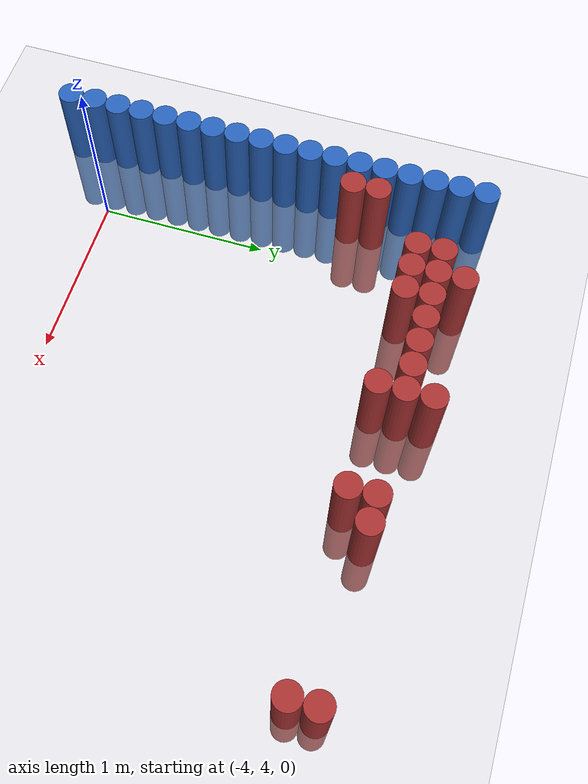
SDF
<sdf version="1.6">
 <world name="default">
  <model name="ground_plane">
   <static>1</static>
   <link name="link">
    <collision name="collision">
     <geometry><plane><normal>0 0 1</normal><size>100 100</size></plane></geometry>
     <surface><friction><ode><mu>100</mu><mu2>50</mu2></ode></friction></surface>
    </collision>
    <visual name="visual">
     <cast_shadows>0</cast_shadows>
     <geometry><plane><normal>0 0 1</normal><size>100 100</size></plane></geometry>
     <material>
      <script><uri>file://media/materials/scripts/gazebo.material</uri><name>Gazebo/Grey</name></script>
     </material>
    </visual>
   </link>
  </model>
  <model name="unit_cylinder_77">
   <static>1</static>
   <pose>-4.425000 3.675000 0.000000 0.000000 0.000000 0.000000</pose>
   <link name="link">
    <inertial>
     <mass>1</mass>
     <inertia><ixx>0.145833</ixx><ixy>0</ixy><ixz>0</ixz><iyy>0.145833</iyy><iyz>0</iyz><izz>0.125</izz></inertia>
    </inertial>
    <collision name="collision">
     <geometry><cylinder><radius>0.075000</radius><length>1</length></cylinder></geometry>
    </collision>
    <visual name="visual">
     <geometry><cylinder><radius>0.075000</radius><length>1</length></cylinder></geometry>
     <material>
      <ambient>0.152000 0.379000 0.720000 1</ambient>
      <diffuse>0.152000 0.379000 0.720000 1</diffuse>
     </material>
     <material>
      <script><name>Gazebo/Grey</name><uri>file://media/materials/scripts/gazebo.material</uri></script>
     </material>
    </visual>
    <sensor name="sensor_contact" type="contact"><contact><collision>collision</collision></contact></sensor>
   </link>
   <plugin filename="gz-sim-touchplugin-system" name="gz::sim::systems::TouchPlugin">
    <target>robot</target>
    <namespace>robot</namespace>
    <time>0.001</time>
    <enabled>true</enabled>
   </plugin>
  </model>
  <model name="unit_cylinder_79">
   <static>1</static>
   <pose>-4.425000 3.825000 0.000000 0.000000 0.000000 0.000000</pose>
   <link name="link">
    <inertial>
     <mass>1</mass>
     <inertia><ixx>0.145833</ixx><ixy>0</ixy><ixz>0</ixz><iyy>0.145833</iyy><iyz>0</iyz><izz>0.125</izz></inertia>
    </inertial>
    <collision name="collision">
     <geometry><cylinder><radius>0.075000</radius><length>1</length></cylinder></geometry>
    </collision>
    <visual name="visual">
     <geometry><cylinder><radius>0.075000</radius><length>1</length></cylinder></geometry>
     <material>
      <ambient>0.152000 0.379000 0.720000 1</ambient>
      <diffuse>0.152000 0.379000 0.720000 1</diffuse>
     </material>
     <material>
      <script><name>Gazebo/Grey</name><uri>file://media/materials/scripts/gazebo.material</uri></script>
     </material>
    </visual>
    <sensor name="sensor_contact" type="contact"><contact><collision>collision</collision></contact></sensor>
   </link>
   <plugin filename="gz-sim-touchplugin-system" name="gz::sim::systems::TouchPlugin">
    <target>robot</target>
    <namespace>robot</namespace>
    <time>0.001</time>
    <enabled>true</enabled>
   </plugin>
  </model>
  <model name="unit_cylinder_81">
   <static>1</static>
   <pose>-4.425000 3.975000 0.000000 0.000000 0.000000 0.000000</pose>
   <link name="link">
    <inertial>
     <mass>1</mass>
     <inertia><ixx>0.145833</ixx><ixy>0</ixy><ixz>0</ixz><iyy>0.145833</iyy><iyz>0</iyz><izz>0.125</izz></inertia>
    </inertial>
    <collision name="collision">
     <geometry><cylinder><radius>0.075000</radius><length>1</length></cylinder></geometry>
    </collision>
    <visual name="visual">
     <geometry><cylinder><radius>0.075000</radius><length>1</length></cylinder></geometry>
     <material>
      <ambient>0.152000 0.379000 0.720000 1</ambient>
      <diffuse>0.152000 0.379000 0.720000 1</diffuse>
     </material>
     <material>
      <script><name>Gazebo/Grey</name><uri>file://media/materials/scripts/gazebo.material</uri></script>
     </material>
    </visual>
    <sensor name="sensor_contact" type="contact"><contact><collision>collision</collision></contact></sensor>
   </link>
   <plugin filename="gz-sim-touchplugin-system" name="gz::sim::systems::TouchPlugin">
    <target>robot</target>
    <namespace>robot</namespace>
    <time>0.001</time>
    <enabled>true</enabled>
   </plugin>
  </model>
  <model name="unit_cylinder_83">
   <static>1</static>
   <pose>-4.425000 4.125000 0.000000 0.000000 0.000000 0.000000</pose>
   <link name="link">
    <inertial>
     <mass>1</mass>
     <inertia><ixx>0.145833</ixx><ixy>0</ixy><ixz>0</ixz><iyy>0.145833</iyy><iyz>0</iyz><izz>0.125</izz></inertia>
    </inertial>
    <collision name="collision">
     <geometry><cylinder><radius>0.075000</radius><length>1</length></cylinder></geometry>
    </collision>
    <visual name="visual">
     <geometry><cylinder><radius>0.075000</radius><length>1</length></cylinder></geometry>
     <material>
      <ambient>0.152000 0.379000 0.720000 1</ambient>
      <diffuse>0.152000 0.379000 0.720000 1</diffuse>
     </material>
     <material>
      <script><name>Gazebo/Grey</name><uri>file://media/materials/scripts/gazebo.material</uri></script>
     </material>
    </visual>
    <sensor name="sensor_contact" type="contact"><contact><collision>collision</collision></contact></sensor>
   </link>
   <plugin filename="gz-sim-touchplugin-system" name="gz::sim::systems::TouchPlugin">
    <target>robot</target>
    <namespace>robot</namespace>
    <time>0.001</time>
    <enabled>true</enabled>
   </plugin>
  </model>
  <model name="unit_cylinder_85">
   <static>1</static>
   <pose>-4.425000 4.275000 0.000000 0.000000 0.000000 0.000000</pose>
   <link name="link">
    <inertial>
     <mass>1</mass>
     <inertia><ixx>0.145833</ixx><ixy>0</ixy><ixz>0</ixz><iyy>0.145833</iyy><iyz>0</iyz><izz>0.125</izz></inertia>
    </inertial>
    <collision name="collision">
     <geometry><cylinder><radius>0.075000</radius><length>1</length></cylinder></geometry>
    </collision>
    <visual name="visual">
     <geometry><cylinder><radius>0.075000</radius><length>1</length></cylinder></geometry>
     <material>
      <ambient>0.152000 0.379000 0.720000 1</ambient>
      <diffuse>0.152000 0.379000 0.720000 1</diffuse>
     </material>
     <material>
      <script><name>Gazebo/Grey</name><uri>file://media/materials/scripts/gazebo.material</uri></script>
     </material>
    </visual>
    <sensor name="sensor_contact" type="contact"><contact><collision>collision</collision></contact></sensor>
   </link>
   <plugin filename="gz-sim-touchplugin-system" name="gz::sim::systems::TouchPlugin">
    <target>robot</target>
    <namespace>robot</namespace>
    <time>0.001</time>
    <enabled>true</enabled>
   </plugin>
  </model>
  <model name="unit_cylinder_87">
   <static>1</static>
   <pose>-4.425000 4.425000 0.000000 0.000000 0.000000 0.000000</pose>
   <link name="link">
    <inertial>
     <mass>1</mass>
     <inertia><ixx>0.145833</ixx><ixy>0</ixy><ixz>0</ixz><iyy>0.145833</iyy><iyz>0</iyz><izz>0.125</izz></inertia>
    </inertial>
    <collision name="collision">
     <geometry><cylinder><radius>0.075000</radius><length>1</length></cylinder></geometry>
    </collision>
    <visual name="visual">
     <geometry><cylinder><radius>0.075000</radius><length>1</length></cylinder></geometry>
     <material>
      <ambient>0.152000 0.379000 0.720000 1</ambient>
      <diffuse>0.152000 0.379000 0.720000 1</diffuse>
     </material>
     <material>
      <script><name>Gazebo/Grey</name><uri>file://media/materials/scripts/gazebo.material</uri></script>
     </material>
    </visual>
    <sensor name="sensor_contact" type="contact"><contact><collision>collision</collision></contact></sensor>
   </link>
   <plugin filename="gz-sim-touchplugin-system" name="gz::sim::systems::TouchPlugin">
    <target>robot</target>
    <namespace>robot</namespace>
    <time>0.001</time>
    <enabled>true</enabled>
   </plugin>
  </model>
  <model name="unit_cylinder_89">
   <static>1</static>
   <pose>-4.425000 4.575000 0.000000 0.000000 0.000000 0.000000</pose>
   <link name="link">
    <inertial>
     <mass>1</mass>
     <inertia><ixx>0.145833</ixx><ixy>0</ixy><ixz>0</ixz><iyy>0.145833</iyy><iyz>0</iyz><izz>0.125</izz></inertia>
    </inertial>
    <collision name="collision">
     <geometry><cylinder><radius>0.075000</radius><length>1</length></cylinder></geometry>
    </collision>
    <visual name="visual">
     <geometry><cylinder><radius>0.075000</radius><length>1</length></cylinder></geometry>
     <material>
      <ambient>0.152000 0.379000 0.720000 1</ambient>
      <diffuse>0.152000 0.379000 0.720000 1</diffuse>
     </material>
     <material>
      <script><name>Gazebo/Grey</name><uri>file://media/materials/scripts/gazebo.material</uri></script>
     </material>
    </visual>
    <sensor name="sensor_contact" type="contact"><contact><collision>collision</collision></contact></sensor>
   </link>
   <plugin filename="gz-sim-touchplugin-system" name="gz::sim::systems::TouchPlugin">
    <target>robot</target>
    <namespace>robot</namespace>
    <time>0.001</time>
    <enabled>true</enabled>
   </plugin>
  </model>
  <model name="unit_cylinder_91">
   <static>1</static>
   <pose>-4.425000 4.725000 0.000000 0.000000 0.000000 0.000000</pose>
   <link name="link">
    <inertial>
     <mass>1</mass>
     <inertia><ixx>0.145833</ixx><ixy>0</ixy><ixz>0</ixz><iyy>0.145833</iyy><iyz>0</iyz><izz>0.125</izz></inertia>
    </inertial>
    <collision name="collision">
     <geometry><cylinder><radius>0.075000</radius><length>1</length></cylinder></geometry>
    </collision>
    <visual name="visual">
     <geometry><cylinder><radius>0.075000</radius><length>1</length></cylinder></geometry>
     <material>
      <ambient>0.152000 0.379000 0.720000 1</ambient>
      <diffuse>0.152000 0.379000 0.720000 1</diffuse>
     </material>
     <material>
      <script><name>Gazebo/Grey</name><uri>file://media/materials/scripts/gazebo.material</uri></script>
     </material>
    </visual>
    <sensor name="sensor_contact" type="contact"><contact><collision>collision</collision></contact></sensor>
   </link>
   <plugin filename="gz-sim-touchplugin-system" name="gz::sim::systems::TouchPlugin">
    <target>robot</target>
    <namespace>robot</namespace>
    <time>0.001</time>
    <enabled>true</enabled>
   </plugin>
  </model>
  <model name="unit_cylinder_93">
   <static>1</static>
   <pose>-4.425000 4.875000 0.000000 0.000000 0.000000 0.000000</pose>
   <link name="link">
    <inertial>
     <mass>1</mass>
     <inertia><ixx>0.145833</ixx><ixy>0</ixy><ixz>0</ixz><iyy>0.145833</iyy><iyz>0</iyz><izz>0.125</izz></inertia>
    </inertial>
    <collision name="collision">
     <geometry><cylinder><radius>0.075000</radius><length>1</length></cylinder></geometry>
    </collision>
    <visual name="visual">
     <geometry><cylinder><radius>0.075000</radius><length>1</length></cylinder></geometry>
     <material>
      <ambient>0.152000 0.379000 0.720000 1</ambient>
      <diffuse>0.152000 0.379000 0.720000 1</diffuse>
     </material>
     <material>
      <script><name>Gazebo/Grey</name><uri>file://media/materials/scripts/gazebo.material</uri></script>
     </material>
    </visual>
    <sensor name="sensor_contact" type="contact"><contact><collision>collision</collision></contact></sensor>
   </link>
   <plugin filename="gz-sim-touchplugin-system" name="gz::sim::systems::TouchPlugin">
    <target>robot</target>
    <namespace>robot</namespace>
    <time>0.001</time>
    <enabled>true</enabled>
   </plugin>
  </model>
  <model name="unit_cylinder_95">
   <static>1</static>
   <pose>-4.425000 5.025000 0.000000 0.000000 0.000000 0.000000</pose>
   <link name="link">
    <inertial>
     <mass>1</mass>
     <inertia><ixx>0.145833</ixx><ixy>0</ixy><ixz>0</ixz><iyy>0.145833</iyy><iyz>0</iyz><izz>0.125</izz></inertia>
    </inertial>
    <collision name="collision">
     <geometry><cylinder><radius>0.075000</radius><length>1</length></cylinder></geometry>
    </collision>
    <visual name="visual">
     <geometry><cylinder><radius>0.075000</radius><length>1</length></cylinder></geometry>
     <material>
      <ambient>0.152000 0.379000 0.720000 1</ambient>
      <diffuse>0.152000 0.379000 0.720000 1</diffuse>
     </material>
     <material>
      <script><name>Gazebo/Grey</name><uri>file://media/materials/scripts/gazebo.material</uri></script>
     </material>
    </visual>
    <sensor name="sensor_contact" type="contact"><contact><collision>collision</collision></contact></sensor>
   </link>
   <plugin filename="gz-sim-touchplugin-system" name="gz::sim::systems::TouchPlugin">
    <target>robot</target>
    <namespace>robot</namespace>
    <time>0.001</time>
    <enabled>true</enabled>
   </plugin>
  </model>
  <model name="unit_cylinder_96">
   <static>1</static>
   <pose>-4.425000 5.175000 0.000000 0.000000 0.000000 0.000000</pose>
   <link name="link">
    <inertial>
     <mass>1</mass>
     <inertia><ixx>0.145833</ixx><ixy>0</ixy><ixz>0</ixz><iyy>0.145833</iyy><iyz>0</iyz><izz>0.125</izz></inertia>
    </inertial>
    <collision name="collision">
     <geometry><cylinder><radius>0.075000</radius><length>1</length></cylinder></geometry>
    </collision>
    <visual name="visual">
     <geometry><cylinder><radius>0.075000</radius><length>1</length></cylinder></geometry>
     <material>
      <ambient>0.152000 0.379000 0.720000 1</ambient>
      <diffuse>0.152000 0.379000 0.720000 1</diffuse>
     </material>
     <material>
      <script><name>Gazebo/Grey</name><uri>file://media/materials/scripts/gazebo.material</uri></script>
     </material>
    </visual>
    <sensor name="sensor_contact" type="contact"><contact><collision>collision</collision></contact></sensor>
   </link>
   <plugin filename="gz-sim-touchplugin-system" name="gz::sim::systems::TouchPlugin">
    <target>robot</target>
    <namespace>robot</namespace>
    <time>0.001</time>
    <enabled>true</enabled>
   </plugin>
  </model>
  <model name="unit_cylinder_97">
   <static>1</static>
   <pose>-4.425000 5.325000 0.000000 0.000000 0.000000 0.000000</pose>
   <link name="link">
    <inertial>
     <mass>1</mass>
     <inertia><ixx>0.145833</ixx><ixy>0</ixy><ixz>0</ixz><iyy>0.145833</iyy><iyz>0</iyz><izz>0.125</izz></inertia>
    </inertial>
    <collision name="collision">
     <geometry><cylinder><radius>0.075000</radius><length>1</length></cylinder></geometry>
    </collision>
    <visual name="visual">
     <geometry><cylinder><radius>0.075000</radius><length>1</length></cylinder></geometry>
     <material>
      <ambient>0.152000 0.379000 0.720000 1</ambient>
      <diffuse>0.152000 0.379000 0.720000 1</diffuse>
     </material>
     <material>
      <script><name>Gazebo/Grey</name><uri>file://media/materials/scripts/gazebo.material</uri></script>
     </material>
    </visual>
    <sensor name="sensor_contact" type="contact"><contact><collision>collision</collision></contact></sensor>
   </link>
   <plugin filename="gz-sim-touchplugin-system" name="gz::sim::systems::TouchPlugin">
    <target>robot</target>
    <namespace>robot</namespace>
    <time>0.001</time>
    <enabled>true</enabled>
   </plugin>
  </model>
  <model name="unit_cylinder_98">
   <static>1</static>
   <pose>-4.425000 5.475000 0.000000 0.000000 0.000000 0.000000</pose>
   <link name="link">
    <inertial>
     <mass>1</mass>
     <inertia><ixx>0.145833</ixx><ixy>0</ixy><ixz>0</ixz><iyy>0.145833</iyy><iyz>0</iyz><izz>0.125</izz></inertia>
    </inertial>
    <collision name="collision">
     <geometry><cylinder><radius>0.075000</radius><length>1</length></cylinder></geometry>
    </collision>
    <visual name="visual">
     <geometry><cylinder><radius>0.075000</radius><length>1</length></cylinder></geometry>
     <material>
      <ambient>0.152000 0.379000 0.720000 1</ambient>
      <diffuse>0.152000 0.379000 0.720000 1</diffuse>
     </material>
     <material>
      <script><name>Gazebo/Grey</name><uri>file://media/materials/scripts/gazebo.material</uri></script>
     </material>
    </visual>
    <sensor name="sensor_contact" type="contact"><contact><collision>collision</collision></contact></sensor>
   </link>
   <plugin filename="gz-sim-touchplugin-system" name="gz::sim::systems::TouchPlugin">
    <target>robot</target>
    <namespace>robot</namespace>
    <time>0.001</time>
    <enabled>true</enabled>
   </plugin>
  </model>
  <model name="unit_cylinder_99">
   <static>1</static>
   <pose>-4.425000 5.625000 0.000000 0.000000 0.000000 0.000000</pose>
   <link name="link">
    <inertial>
     <mass>1</mass>
     <inertia><ixx>0.145833</ixx><ixy>0</ixy><ixz>0</ixz><iyy>0.145833</iyy><iyz>0</iyz><izz>0.125</izz></inertia>
    </inertial>
    <collision name="collision">
     <geometry><cylinder><radius>0.075000</radius><length>1</length></cylinder></geometry>
    </collision>
    <visual name="visual">
     <geometry><cylinder><radius>0.075000</radius><length>1</length></cylinder></geometry>
     <material>
      <ambient>0.152000 0.379000 0.720000 1</ambient>
      <diffuse>0.152000 0.379000 0.720000 1</diffuse>
     </material>
     <material>
      <script><name>Gazebo/Grey</name><uri>file://media/materials/scripts/gazebo.material</uri></script>
     </material>
    </visual>
    <sensor name="sensor_contact" type="contact"><contact><collision>collision</collision></contact></sensor>
   </link>
   <plugin filename="gz-sim-touchplugin-system" name="gz::sim::systems::TouchPlugin">
    <target>robot</target>
    <namespace>robot</namespace>
    <time>0.001</time>
    <enabled>true</enabled>
   </plugin>
  </model>
  <model name="unit_cylinder_100">
   <static>1</static>
   <pose>-4.425000 5.775000 0.000000 0.000000 0.000000 0.000000</pose>
   <link name="link">
    <inertial>
     <mass>1</mass>
     <inertia><ixx>0.145833</ixx><ixy>0</ixy><ixz>0</ixz><iyy>0.145833</iyy><iyz>0</iyz><izz>0.125</izz></inertia>
    </inertial>
    <collision name="collision">
     <geometry><cylinder><radius>0.075000</radius><length>1</length></cylinder></geometry>
    </collision>
    <visual name="visual">
     <geometry><cylinder><radius>0.075000</radius><length>1</length></cylinder></geometry>
     <material>
      <ambient>0.152000 0.379000 0.720000 1</ambient>
      <diffuse>0.152000 0.379000 0.720000 1</diffuse>
     </material>
     <material>
      <script><name>Gazebo/Grey</name><uri>file://media/materials/scripts/gazebo.material</uri></script>
     </material>
    </visual>
    <sensor name="sensor_contact" type="contact"><contact><collision>collision</collision></contact></sensor>
   </link>
   <plugin filename="gz-sim-touchplugin-system" name="gz::sim::systems::TouchPlugin">
    <target>robot</target>
    <namespace>robot</namespace>
    <time>0.001</time>
    <enabled>true</enabled>
   </plugin>
  </model>
  <model name="unit_cylinder_101">
   <static>1</static>
   <pose>-4.425000 5.925000 0.000000 0.000000 0.000000 0.000000</pose>
   <link name="link">
    <inertial>
     <mass>1</mass>
     <inertia><ixx>0.145833</ixx><ixy>0</ixy><ixz>0</ixz><iyy>0.145833</iyy><iyz>0</iyz><izz>0.125</izz></inertia>
    </inertial>
    <collision name="collision">
     <geometry><cylinder><radius>0.075000</radius><length>1</length></cylinder></geometry>
    </collision>
    <visual name="visual">
     <geometry><cylinder><radius>0.075000</radius><length>1</length></cylinder></geometry>
     <material>
      <ambient>0.152000 0.379000 0.720000 1</ambient>
      <diffuse>0.152000 0.379000 0.720000 1</diffuse>
     </material>
     <material>
      <script><name>Gazebo/Grey</name><uri>file://media/materials/scripts/gazebo.material</uri></script>
     </material>
    </visual>
    <sensor name="sensor_contact" type="contact"><contact><collision>collision</collision></contact></sensor>
   </link>
   <plugin filename="gz-sim-touchplugin-system" name="gz::sim::systems::TouchPlugin">
    <target>robot</target>
    <namespace>robot</namespace>
    <time>0.001</time>
    <enabled>true</enabled>
   </plugin>
  </model>
  <model name="unit_cylinder_102">
   <static>1</static>
   <pose>-4.425000 6.075000 0.000000 0.000000 0.000000 0.000000</pose>
   <link name="link">
    <inertial>
     <mass>1</mass>
     <inertia><ixx>0.145833</ixx><ixy>0</ixy><ixz>0</ixz><iyy>0.145833</iyy><iyz>0</iyz><izz>0.125</izz></inertia>
    </inertial>
    <collision name="collision">
     <geometry><cylinder><radius>0.075000</radius><length>1</length></cylinder></geometry>
    </collision>
    <visual name="visual">
     <geometry><cylinder><radius>0.075000</radius><length>1</length></cylinder></geometry>
     <material>
      <ambient>0.152000 0.379000 0.720000 1</ambient>
      <diffuse>0.152000 0.379000 0.720000 1</diffuse>
     </material>
     <material>
      <script><name>Gazebo/Grey</name><uri>file://media/materials/scripts/gazebo.material</uri></script>
     </material>
    </visual>
    <sensor name="sensor_contact" type="contact"><contact><collision>collision</collision></contact></sensor>
   </link>
   <plugin filename="gz-sim-touchplugin-system" name="gz::sim::systems::TouchPlugin">
    <target>robot</target>
    <namespace>robot</namespace>
    <time>0.001</time>
    <enabled>true</enabled>
   </plugin>
  </model>
  <model name="unit_cylinder_103">
   <static>1</static>
   <pose>-4.425000 6.225000 0.000000 0.000000 0.000000 0.000000</pose>
   <link name="link">
    <inertial>
     <mass>1</mass>
     <inertia><ixx>0.145833</ixx><ixy>0</ixy><ixz>0</ixz><iyy>0.145833</iyy><iyz>0</iyz><izz>0.125</izz></inertia>
    </inertial>
    <collision name="collision">
     <geometry><cylinder><radius>0.075000</radius><length>1</length></cylinder></geometry>
    </collision>
    <visual name="visual">
     <geometry><cylinder><radius>0.075000</radius><length>1</length></cylinder></geometry>
     <material>
      <ambient>0.152000 0.379000 0.720000 1</ambient>
      <diffuse>0.152000 0.379000 0.720000 1</diffuse>
     </material>
     <material>
      <script><name>Gazebo/Grey</name><uri>file://media/materials/scripts/gazebo.material</uri></script>
     </material>
    </visual>
    <sensor name="sensor_contact" type="contact"><contact><collision>collision</collision></contact></sensor>
   </link>
   <plugin filename="gz-sim-touchplugin-system" name="gz::sim::systems::TouchPlugin">
    <target>robot</target>
    <namespace>robot</namespace>
    <time>0.001</time>
    <enabled>true</enabled>
   </plugin>
  </model>
  <model name="unit_cylinder_126">
   <static>1</static>
   <pose>-4.275000 5.475000 0.000000 0.000000 0.000000 0.000000</pose>
   <link name="link">
    <inertial>
     <mass>1</mass>
     <inertia><ixx>0.145833</ixx><ixy>0</ixy><ixz>0</ixz><iyy>0.145833</iyy><iyz>0</iyz><izz>0.125</izz></inertia>
    </inertial>
    <collision name="collision">
     <geometry><cylinder><radius>0.075000</radius><length>1</length></cylinder></geometry>
    </collision>
    <visual name="visual">
     <geometry><cylinder><radius>0.075000</radius><length>1</length></cylinder></geometry>
     <material>
      <ambient>0.648000 0.192000 0.192000 1</ambient>
      <diffuse>0.648000 0.192000 0.192000 1</diffuse>
     </material>
     <material>
      <script><name>Gazebo/Grey</name><uri>file://media/materials/scripts/gazebo.material</uri></script>
     </material>
    </visual>
    <sensor name="sensor_contact" type="contact"><contact><collision>collision</collision></contact></sensor>
   </link>
   <plugin filename="gz-sim-touchplugin-system" name="gz::sim::systems::TouchPlugin">
    <target>robot</target>
    <namespace>robot</namespace>
    <time>0.001</time>
    <enabled>true</enabled>
   </plugin>
  </model>
  <model name="unit_cylinder_127">
   <static>1</static>
   <pose>-4.275000 5.625000 0.000000 0.000000 0.000000 0.000000</pose>
   <link name="link">
    <inertial>
     <mass>1</mass>
     <inertia><ixx>0.145833</ixx><ixy>0</ixy><ixz>0</ixz><iyy>0.145833</iyy><iyz>0</iyz><izz>0.125</izz></inertia>
    </inertial>
    <collision name="collision">
     <geometry><cylinder><radius>0.075000</radius><length>1</length></cylinder></geometry>
    </collision>
    <visual name="visual">
     <geometry><cylinder><radius>0.075000</radius><length>1</length></cylinder></geometry>
     <material>
      <ambient>0.648000 0.192000 0.192000 1</ambient>
      <diffuse>0.648000 0.192000 0.192000 1</diffuse>
     </material>
     <material>
      <script><name>Gazebo/Grey</name><uri>file://media/materials/scripts/gazebo.material</uri></script>
     </material>
    </visual>
    <sensor name="sensor_contact" type="contact"><contact><collision>collision</collision></contact></sensor>
   </link>
   <plugin filename="gz-sim-touchplugin-system" name="gz::sim::systems::TouchPlugin">
    <target>robot</target>
    <namespace>robot</namespace>
    <time>0.001</time>
    <enabled>true</enabled>
   </plugin>
  </model>
  <model name="unit_cylinder_141">
   <static>1</static>
   <pose>-3.975000 5.925000 0.000000 0.000000 0.000000 0.000000</pose>
   <link name="link">
    <inertial>
     <mass>1</mass>
     <inertia><ixx>0.145833</ixx><ixy>0</ixy><ixz>0</ixz><iyy>0.145833</iyy><iyz>0</iyz><izz>0.125</izz></inertia>
    </inertial>
    <collision name="collision">
     <geometry><cylinder><radius>0.075000</radius><length>1</length></cylinder></geometry>
    </collision>
    <visual name="visual">
     <geometry><cylinder><radius>0.075000</radius><length>1</length></cylinder></geometry>
     <material>
      <ambient>0.648000 0.192000 0.192000 1</ambient>
      <diffuse>0.648000 0.192000 0.192000 1</diffuse>
     </material>
     <material>
      <script><name>Gazebo/Grey</name><uri>file://media/materials/scripts/gazebo.material</uri></script>
     </material>
    </visual>
    <sensor name="sensor_contact" type="contact"><contact><collision>collision</collision></contact></sensor>
   </link>
   <plugin filename="gz-sim-touchplugin-system" name="gz::sim::systems::TouchPlugin">
    <target>robot</target>
    <namespace>robot</namespace>
    <time>0.001</time>
    <enabled>true</enabled>
   </plugin>
  </model>
  <model name="unit_cylinder_142">
   <static>1</static>
   <pose>-3.975000 6.075000 0.000000 0.000000 0.000000 0.000000</pose>
   <link name="link">
    <inertial>
     <mass>1</mass>
     <inertia><ixx>0.145833</ixx><ixy>0</ixy><ixz>0</ixz><iyy>0.145833</iyy><iyz>0</iyz><izz>0.125</izz></inertia>
    </inertial>
    <collision name="collision">
     <geometry><cylinder><radius>0.075000</radius><length>1</length></cylinder></geometry>
    </collision>
    <visual name="visual">
     <geometry><cylinder><radius>0.075000</radius><length>1</length></cylinder></geometry>
     <material>
      <ambient>0.648000 0.192000 0.192000 1</ambient>
      <diffuse>0.648000 0.192000 0.192000 1</diffuse>
     </material>
     <material>
      <script><name>Gazebo/Grey</name><uri>file://media/materials/scripts/gazebo.material</uri></script>
     </material>
    </visual>
    <sensor name="sensor_contact" type="contact"><contact><collision>collision</collision></contact></sensor>
   </link>
   <plugin filename="gz-sim-touchplugin-system" name="gz::sim::systems::TouchPlugin">
    <target>robot</target>
    <namespace>robot</namespace>
    <time>0.001</time>
    <enabled>true</enabled>
   </plugin>
  </model>
  <model name="unit_cylinder_152">
   <static>1</static>
   <pose>-3.825000 5.925000 0.000000 0.000000 0.000000 0.000000</pose>
   <link name="link">
    <inertial>
     <mass>1</mass>
     <inertia><ixx>0.145833</ixx><ixy>0</ixy><ixz>0</ixz><iyy>0.145833</iyy><iyz>0</iyz><izz>0.125</izz></inertia>
    </inertial>
    <collision name="collision">
     <geometry><cylinder><radius>0.075000</radius><length>1</length></cylinder></geometry>
    </collision>
    <visual name="visual">
     <geometry><cylinder><radius>0.075000</radius><length>1</length></cylinder></geometry>
     <material>
      <ambient>0.648000 0.192000 0.192000 1</ambient>
      <diffuse>0.648000 0.192000 0.192000 1</diffuse>
     </material>
     <material>
      <script><name>Gazebo/Grey</name><uri>file://media/materials/scripts/gazebo.material</uri></script>
     </material>
    </visual>
    <sensor name="sensor_contact" type="contact"><contact><collision>collision</collision></contact></sensor>
   </link>
   <plugin filename="gz-sim-touchplugin-system" name="gz::sim::systems::TouchPlugin">
    <target>robot</target>
    <namespace>robot</namespace>
    <time>0.001</time>
    <enabled>true</enabled>
   </plugin>
  </model>
  <model name="unit_cylinder_153">
   <static>1</static>
   <pose>-3.825000 6.075000 0.000000 0.000000 0.000000 0.000000</pose>
   <link name="link">
    <inertial>
     <mass>1</mass>
     <inertia><ixx>0.145833</ixx><ixy>0</ixy><ixz>0</ixz><iyy>0.145833</iyy><iyz>0</iyz><izz>0.125</izz></inertia>
    </inertial>
    <collision name="collision">
     <geometry><cylinder><radius>0.075000</radius><length>1</length></cylinder></geometry>
    </collision>
    <visual name="visual">
     <geometry><cylinder><radius>0.075000</radius><length>1</length></cylinder></geometry>
     <material>
      <ambient>0.648000 0.192000 0.192000 1</ambient>
      <diffuse>0.648000 0.192000 0.192000 1</diffuse>
     </material>
     <material>
      <script><name>Gazebo/Grey</name><uri>file://media/materials/scripts/gazebo.material</uri></script>
     </material>
    </visual>
    <sensor name="sensor_contact" type="contact"><contact><collision>collision</collision></contact></sensor>
   </link>
   <plugin filename="gz-sim-touchplugin-system" name="gz::sim::systems::TouchPlugin">
    <target>robot</target>
    <namespace>robot</namespace>
    <time>0.001</time>
    <enabled>true</enabled>
   </plugin>
  </model>
  <model name="unit_cylinder_154">
   <static>1</static>
   <pose>-3.825000 6.225000 0.000000 0.000000 0.000000 0.000000</pose>
   <link name="link">
    <inertial>
     <mass>1</mass>
     <inertia><ixx>0.145833</ixx><ixy>0</ixy><ixz>0</ixz><iyy>0.145833</iyy><iyz>0</iyz><izz>0.125</izz></inertia>
    </inertial>
    <collision name="collision">
     <geometry><cylinder><radius>0.075000</radius><length>1</length></cylinder></geometry>
    </collision>
    <visual name="visual">
     <geometry><cylinder><radius>0.075000</radius><length>1</length></cylinder></geometry>
     <material>
      <ambient>0.648000 0.192000 0.192000 1</ambient>
      <diffuse>0.648000 0.192000 0.192000 1</diffuse>
     </material>
     <material>
      <script><name>Gazebo/Grey</name><uri>file://media/materials/scripts/gazebo.material</uri></script>
     </material>
    </visual>
    <sensor name="sensor_contact" type="contact"><contact><collision>collision</collision></contact></sensor>
   </link>
   <plugin filename="gz-sim-touchplugin-system" name="gz::sim::systems::TouchPlugin">
    <target>robot</target>
    <namespace>robot</namespace>
    <time>0.001</time>
    <enabled>true</enabled>
   </plugin>
  </model>
  <model name="unit_cylinder_165">
   <static>1</static>
   <pose>-3.675000 5.925000 0.000000 0.000000 0.000000 0.000000</pose>
   <link name="link">
    <inertial>
     <mass>1</mass>
     <inertia><ixx>0.145833</ixx><ixy>0</ixy><ixz>0</ixz><iyy>0.145833</iyy><iyz>0</iyz><izz>0.125</izz></inertia>
    </inertial>
    <collision name="collision">
     <geometry><cylinder><radius>0.075000</radius><length>1</length></cylinder></geometry>
    </collision>
    <visual name="visual">
     <geometry><cylinder><radius>0.075000</radius><length>1</length></cylinder></geometry>
     <material>
      <ambient>0.648000 0.192000 0.192000 1</ambient>
      <diffuse>0.648000 0.192000 0.192000 1</diffuse>
     </material>
     <material>
      <script><name>Gazebo/Grey</name><uri>file://media/materials/scripts/gazebo.material</uri></script>
     </material>
    </visual>
    <sensor name="sensor_contact" type="contact"><contact><collision>collision</collision></contact></sensor>
   </link>
   <plugin filename="gz-sim-touchplugin-system" name="gz::sim::systems::TouchPlugin">
    <target>robot</target>
    <namespace>robot</namespace>
    <time>0.001</time>
    <enabled>true</enabled>
   </plugin>
  </model>
  <model name="unit_cylinder_166">
   <static>1</static>
   <pose>-3.675000 6.075000 0.000000 0.000000 0.000000 0.000000</pose>
   <link name="link">
    <inertial>
     <mass>1</mass>
     <inertia><ixx>0.145833</ixx><ixy>0</ixy><ixz>0</ixz><iyy>0.145833</iyy><iyz>0</iyz><izz>0.125</izz></inertia>
    </inertial>
    <collision name="collision">
     <geometry><cylinder><radius>0.075000</radius><length>1</length></cylinder></geometry>
    </collision>
    <visual name="visual">
     <geometry><cylinder><radius>0.075000</radius><length>1</length></cylinder></geometry>
     <material>
      <ambient>0.648000 0.192000 0.192000 1</ambient>
      <diffuse>0.648000 0.192000 0.192000 1</diffuse>
     </material>
     <material>
      <script><name>Gazebo/Grey</name><uri>file://media/materials/scripts/gazebo.material</uri></script>
     </material>
    </visual>
    <sensor name="sensor_contact" type="contact"><contact><collision>collision</collision></contact></sensor>
   </link>
   <plugin filename="gz-sim-touchplugin-system" name="gz::sim::systems::TouchPlugin">
    <target>robot</target>
    <namespace>robot</namespace>
    <time>0.001</time>
    <enabled>true</enabled>
   </plugin>
  </model>
  <model name="unit_cylinder_173">
   <static>1</static>
   <pose>-3.525000 6.075000 0.000000 0.000000 0.000000 0.000000</pose>
   <link name="link">
    <inertial>
     <mass>1</mass>
     <inertia><ixx>0.145833</ixx><ixy>0</ixy><ixz>0</ixz><iyy>0.145833</iyy><iyz>0</iyz><izz>0.125</izz></inertia>
    </inertial>
    <collision name="collision">
     <geometry><cylinder><radius>0.075000</radius><length>1</length></cylinder></geometry>
    </collision>
    <visual name="visual">
     <geometry><cylinder><radius>0.075000</radius><length>1</length></cylinder></geometry>
     <material>
      <ambient>0.648000 0.192000 0.192000 1</ambient>
      <diffuse>0.648000 0.192000 0.192000 1</diffuse>
     </material>
     <material>
      <script><name>Gazebo/Grey</name><uri>file://media/materials/scripts/gazebo.material</uri></script>
     </material>
    </visual>
    <sensor name="sensor_contact" type="contact"><contact><collision>collision</collision></contact></sensor>
   </link>
   <plugin filename="gz-sim-touchplugin-system" name="gz::sim::systems::TouchPlugin">
    <target>robot</target>
    <namespace>robot</namespace>
    <time>0.001</time>
    <enabled>true</enabled>
   </plugin>
  </model>
  <model name="unit_cylinder_178">
   <static>1</static>
   <pose>-3.375000 6.075000 0.000000 0.000000 0.000000 0.000000</pose>
   <link name="link">
    <inertial>
     <mass>1</mass>
     <inertia><ixx>0.145833</ixx><ixy>0</ixy><ixz>0</ixz><iyy>0.145833</iyy><iyz>0</iyz><izz>0.125</izz></inertia>
    </inertial>
    <collision name="collision">
     <geometry><cylinder><radius>0.075000</radius><length>1</length></cylinder></geometry>
    </collision>
    <visual name="visual">
     <geometry><cylinder><radius>0.075000</radius><length>1</length></cylinder></geometry>
     <material>
      <ambient>0.648000 0.192000 0.192000 1</ambient>
      <diffuse>0.648000 0.192000 0.192000 1</diffuse>
     </material>
     <material>
      <script><name>Gazebo/Grey</name><uri>file://media/materials/scripts/gazebo.material</uri></script>
     </material>
    </visual>
    <sensor name="sensor_contact" type="contact"><contact><collision>collision</collision></contact></sensor>
   </link>
   <plugin filename="gz-sim-touchplugin-system" name="gz::sim::systems::TouchPlugin">
    <target>robot</target>
    <namespace>robot</namespace>
    <time>0.001</time>
    <enabled>true</enabled>
   </plugin>
  </model>
  <model name="unit_cylinder_183">
   <static>1</static>
   <pose>-3.225000 6.075000 0.000000 0.000000 0.000000 0.000000</pose>
   <link name="link">
    <inertial>
     <mass>1</mass>
     <inertia><ixx>0.145833</ixx><ixy>0</ixy><ixz>0</ixz><iyy>0.145833</iyy><iyz>0</iyz><izz>0.125</izz></inertia>
    </inertial>
    <collision name="collision">
     <geometry><cylinder><radius>0.075000</radius><length>1</length></cylinder></geometry>
    </collision>
    <visual name="visual">
     <geometry><cylinder><radius>0.075000</radius><length>1</length></cylinder></geometry>
     <material>
      <ambient>0.648000 0.192000 0.192000 1</ambient>
      <diffuse>0.648000 0.192000 0.192000 1</diffuse>
     </material>
     <material>
      <script><name>Gazebo/Grey</name><uri>file://media/materials/scripts/gazebo.material</uri></script>
     </material>
    </visual>
    <sensor name="sensor_contact" type="contact"><contact><collision>collision</collision></contact></sensor>
   </link>
   <plugin filename="gz-sim-touchplugin-system" name="gz::sim::systems::TouchPlugin">
    <target>robot</target>
    <namespace>robot</namespace>
    <time>0.001</time>
    <enabled>true</enabled>
   </plugin>
  </model>
  <model name="unit_cylinder_186">
   <static>1</static>
   <pose>-3.075000 5.925000 0.000000 0.000000 0.000000 0.000000</pose>
   <link name="link">
    <inertial>
     <mass>1</mass>
     <inertia><ixx>0.145833</ixx><ixy>0</ixy><ixz>0</ixz><iyy>0.145833</iyy><iyz>0</iyz><izz>0.125</izz></inertia>
    </inertial>
    <collision name="collision">
     <geometry><cylinder><radius>0.075000</radius><length>1</length></cylinder></geometry>
    </collision>
    <visual name="visual">
     <geometry><cylinder><radius>0.075000</radius><length>1</length></cylinder></geometry>
     <material>
      <ambient>0.648000 0.192000 0.192000 1</ambient>
      <diffuse>0.648000 0.192000 0.192000 1</diffuse>
     </material>
     <material>
      <script><name>Gazebo/Grey</name><uri>file://media/materials/scripts/gazebo.material</uri></script>
     </material>
    </visual>
    <sensor name="sensor_contact" type="contact"><contact><collision>collision</collision></contact></sensor>
   </link>
   <plugin filename="gz-sim-touchplugin-system" name="gz::sim::systems::TouchPlugin">
    <target>robot</target>
    <namespace>robot</namespace>
    <time>0.001</time>
    <enabled>true</enabled>
   </plugin>
  </model>
  <model name="unit_cylinder_187">
   <static>1</static>
   <pose>-3.075000 6.075000 0.000000 0.000000 0.000000 0.000000</pose>
   <link name="link">
    <inertial>
     <mass>1</mass>
     <inertia><ixx>0.145833</ixx><ixy>0</ixy><ixz>0</ixz><iyy>0.145833</iyy><iyz>0</iyz><izz>0.125</izz></inertia>
    </inertial>
    <collision name="collision">
     <geometry><cylinder><radius>0.075000</radius><length>1</length></cylinder></geometry>
    </collision>
    <visual name="visual">
     <geometry><cylinder><radius>0.075000</radius><length>1</length></cylinder></geometry>
     <material>
      <ambient>0.648000 0.192000 0.192000 1</ambient>
      <diffuse>0.648000 0.192000 0.192000 1</diffuse>
     </material>
     <material>
      <script><name>Gazebo/Grey</name><uri>file://media/materials/scripts/gazebo.material</uri></script>
     </material>
    </visual>
    <sensor name="sensor_contact" type="contact"><contact><collision>collision</collision></contact></sensor>
   </link>
   <plugin filename="gz-sim-touchplugin-system" name="gz::sim::systems::TouchPlugin">
    <target>robot</target>
    <namespace>robot</namespace>
    <time>0.001</time>
    <enabled>true</enabled>
   </plugin>
  </model>
  <model name="unit_cylinder_188">
   <static>1</static>
   <pose>-3.075000 6.225000 0.000000 0.000000 0.000000 0.000000</pose>
   <link name="link">
    <inertial>
     <mass>1</mass>
     <inertia><ixx>0.145833</ixx><ixy>0</ixy><ixz>0</ixz><iyy>0.145833</iyy><iyz>0</iyz><izz>0.125</izz></inertia>
    </inertial>
    <collision name="collision">
     <geometry><cylinder><radius>0.075000</radius><length>1</length></cylinder></geometry>
    </collision>
    <visual name="visual">
     <geometry><cylinder><radius>0.075000</radius><length>1</length></cylinder></geometry>
     <material>
      <ambient>0.648000 0.192000 0.192000 1</ambient>
      <diffuse>0.648000 0.192000 0.192000 1</diffuse>
     </material>
     <material>
      <script><name>Gazebo/Grey</name><uri>file://media/materials/scripts/gazebo.material</uri></script>
     </material>
    </visual>
    <sensor name="sensor_contact" type="contact"><contact><collision>collision</collision></contact></sensor>
   </link>
   <plugin filename="gz-sim-touchplugin-system" name="gz::sim::systems::TouchPlugin">
    <target>robot</target>
    <namespace>robot</namespace>
    <time>0.001</time>
    <enabled>true</enabled>
   </plugin>
  </model>
  <model name="unit_cylinder_213">
   <static>1</static>
   <pose>-2.475000 5.925000 0.000000 0.000000 0.000000 0.000000</pose>
   <link name="link">
    <inertial>
     <mass>1</mass>
     <inertia><ixx>0.145833</ixx><ixy>0</ixy><ixz>0</ixz><iyy>0.145833</iyy><iyz>0</iyz><izz>0.125</izz></inertia>
    </inertial>
    <collision name="collision">
     <geometry><cylinder><radius>0.075000</radius><length>1</length></cylinder></geometry>
    </collision>
    <visual name="visual">
     <geometry><cylinder><radius>0.075000</radius><length>1</length></cylinder></geometry>
     <material>
      <ambient>0.648000 0.192000 0.192000 1</ambient>
      <diffuse>0.648000 0.192000 0.192000 1</diffuse>
     </material>
     <material>
      <script><name>Gazebo/Grey</name><uri>file://media/materials/scripts/gazebo.material</uri></script>
     </material>
    </visual>
    <sensor name="sensor_contact" type="contact"><contact><collision>collision</collision></contact></sensor>
   </link>
   <plugin filename="gz-sim-touchplugin-system" name="gz::sim::systems::TouchPlugin">
    <target>robot</target>
    <namespace>robot</namespace>
    <time>0.001</time>
    <enabled>true</enabled>
   </plugin>
  </model>
  <model name="unit_cylinder_214">
   <static>1</static>
   <pose>-2.475000 6.075000 0.000000 0.000000 0.000000 0.000000</pose>
   <link name="link">
    <inertial>
     <mass>1</mass>
     <inertia><ixx>0.145833</ixx><ixy>0</ixy><ixz>0</ixz><iyy>0.145833</iyy><iyz>0</iyz><izz>0.125</izz></inertia>
    </inertial>
    <collision name="collision">
     <geometry><cylinder><radius>0.075000</radius><length>1</length></cylinder></geometry>
    </collision>
    <visual name="visual">
     <geometry><cylinder><radius>0.075000</radius><length>1</length></cylinder></geometry>
     <material>
      <ambient>0.648000 0.192000 0.192000 1</ambient>
      <diffuse>0.648000 0.192000 0.192000 1</diffuse>
     </material>
     <material>
      <script><name>Gazebo/Grey</name><uri>file://media/materials/scripts/gazebo.material</uri></script>
     </material>
    </visual>
    <sensor name="sensor_contact" type="contact"><contact><collision>collision</collision></contact></sensor>
   </link>
   <plugin filename="gz-sim-touchplugin-system" name="gz::sim::systems::TouchPlugin">
    <target>robot</target>
    <namespace>robot</namespace>
    <time>0.001</time>
    <enabled>true</enabled>
   </plugin>
  </model>
  <model name="unit_cylinder_216">
   <static>1</static>
   <pose>-2.325000 6.075000 0.000000 0.000000 0.000000 0.000000</pose>
   <link name="link">
    <inertial>
     <mass>1</mass>
     <inertia><ixx>0.145833</ixx><ixy>0</ixy><ixz>0</ixz><iyy>0.145833</iyy><iyz>0</iyz><izz>0.125</izz></inertia>
    </inertial>
    <collision name="collision">
     <geometry><cylinder><radius>0.075000</radius><length>1</length></cylinder></geometry>
    </collision>
    <visual name="visual">
     <geometry><cylinder><radius>0.075000</radius><length>1</length></cylinder></geometry>
     <material>
      <ambient>0.648000 0.192000 0.192000 1</ambient>
      <diffuse>0.648000 0.192000 0.192000 1</diffuse>
     </material>
     <material>
      <script><name>Gazebo/Grey</name><uri>file://media/materials/scripts/gazebo.material</uri></script>
     </material>
    </visual>
    <sensor name="sensor_contact" type="contact"><contact><collision>collision</collision></contact></sensor>
   </link>
   <plugin filename="gz-sim-touchplugin-system" name="gz::sim::systems::TouchPlugin">
    <target>robot</target>
    <namespace>robot</namespace>
    <time>0.001</time>
    <enabled>true</enabled>
   </plugin>
  </model>
  <model name="unit_cylinder_229">
   <static>1</static>
   <pose>-1.425000 5.925000 0.000000 0.000000 0.000000 0.000000</pose>
   <link name="link">
    <inertial>
     <mass>1</mass>
     <inertia><ixx>0.145833</ixx><ixy>0</ixy><ixz>0</ixz><iyy>0.145833</iyy><iyz>0</iyz><izz>0.125</izz></inertia>
    </inertial>
    <collision name="collision">
     <geometry><cylinder><radius>0.075000</radius><length>1</length></cylinder></geometry>
    </collision>
    <visual name="visual">
     <geometry><cylinder><radius>0.075000</radius><length>1</length></cylinder></geometry>
     <material>
      <ambient>0.648000 0.192000 0.192000 1</ambient>
      <diffuse>0.648000 0.192000 0.192000 1</diffuse>
     </material>
     <material>
      <script><name>Gazebo/Grey</name><uri>file://media/materials/scripts/gazebo.material</uri></script>
     </material>
    </visual>
    <sensor name="sensor_contact" type="contact"><contact><collision>collision</collision></contact></sensor>
   </link>
   <plugin filename="gz-sim-touchplugin-system" name="gz::sim::systems::TouchPlugin">
    <target>robot</target>
    <namespace>robot</namespace>
    <time>0.001</time>
    <enabled>true</enabled>
   </plugin>
  </model>
  <model name="unit_cylinder_230">
   <static>1</static>
   <pose>-1.425000 6.075000 0.000000 0.000000 0.000000 0.000000</pose>
   <link name="link">
    <inertial>
     <mass>1</mass>
     <inertia><ixx>0.145833</ixx><ixy>0</ixy><ixz>0</ixz><iyy>0.145833</iyy><iyz>0</iyz><izz>0.125</izz></inertia>
    </inertial>
    <collision name="collision">
     <geometry><cylinder><radius>0.075000</radius><length>1</length></cylinder></geometry>
    </collision>
    <visual name="visual">
     <geometry><cylinder><radius>0.075000</radius><length>1</length></cylinder></geometry>
     <material>
      <ambient>0.648000 0.192000 0.192000 1</ambient>
      <diffuse>0.648000 0.192000 0.192000 1</diffuse>
     </material>
     <material>
      <script><name>Gazebo/Grey</name><uri>file://media/materials/scripts/gazebo.material</uri></script>
     </material>
    </visual>
    <sensor name="sensor_contact" type="contact"><contact><collision>collision</collision></contact></sensor>
   </link>
   <plugin filename="gz-sim-touchplugin-system" name="gz::sim::systems::TouchPlugin">
    <target>robot</target>
    <namespace>robot</namespace>
    <time>0.001</time>
    <enabled>true</enabled>
   </plugin>
  </model>
 </world>
</sdf>
